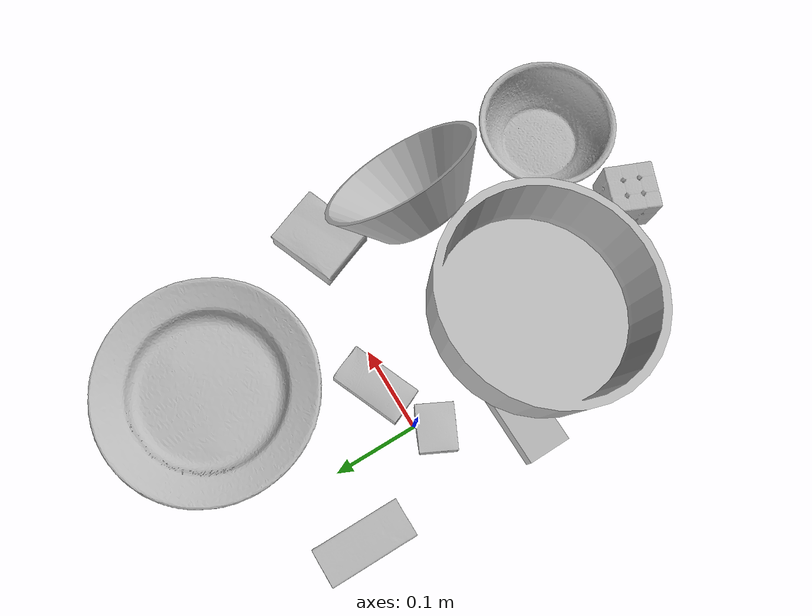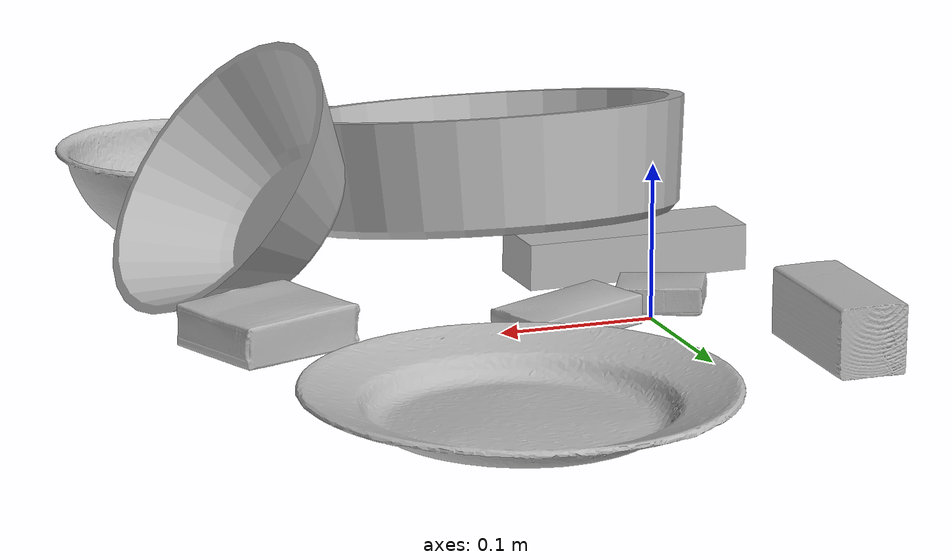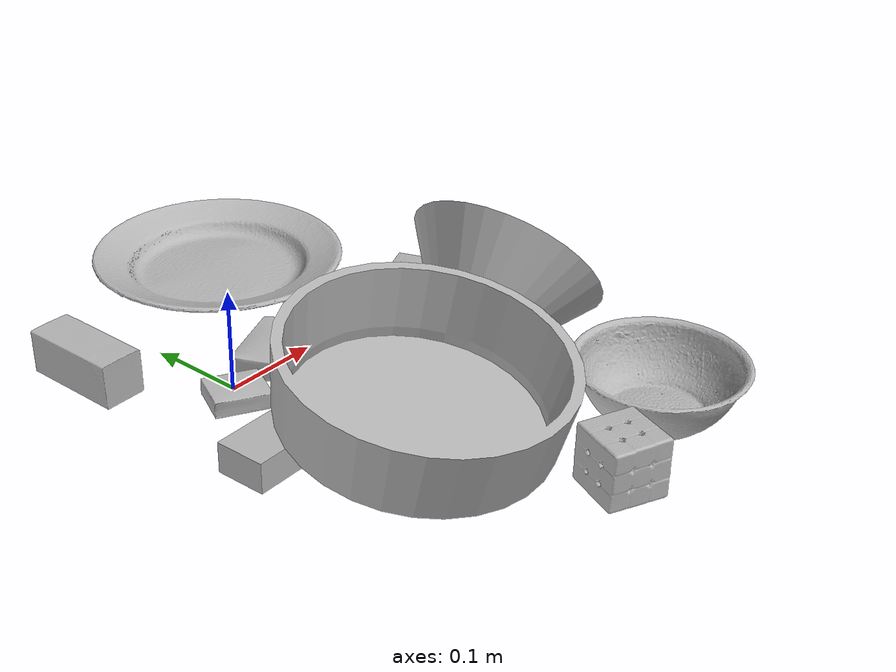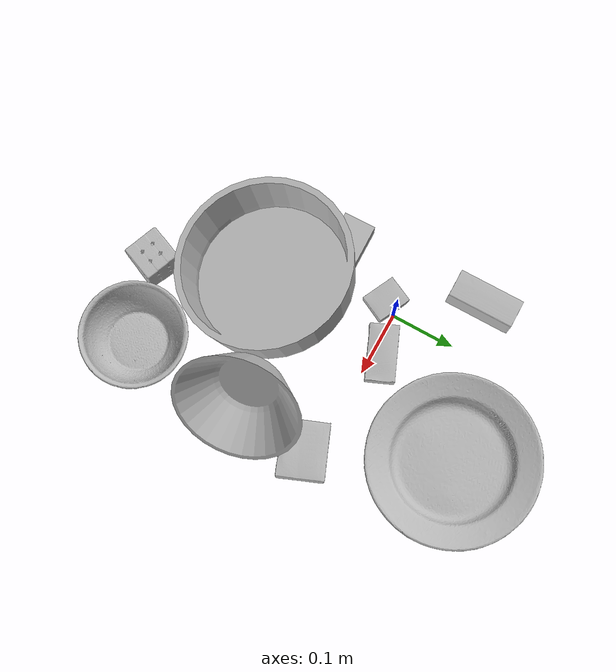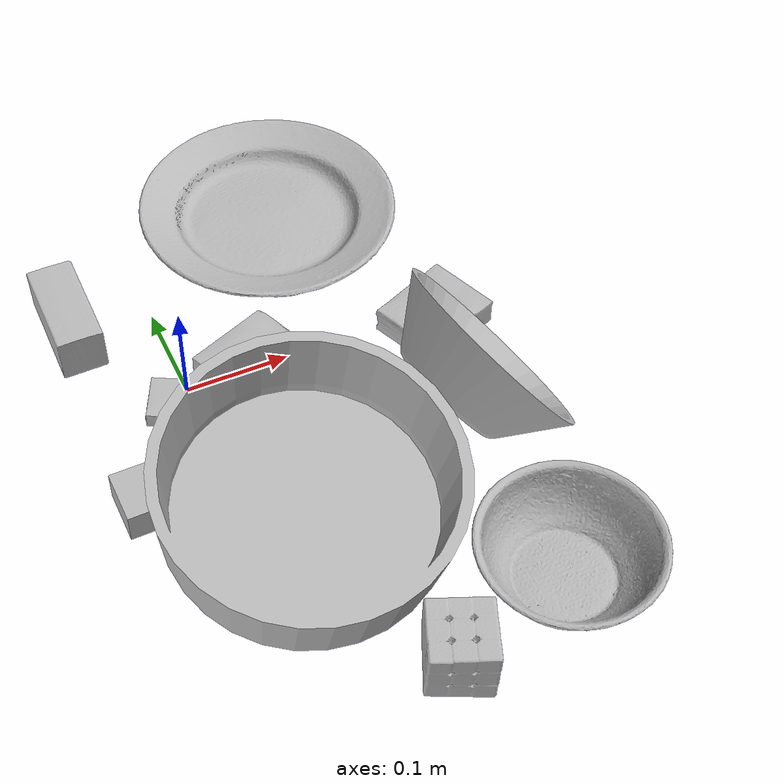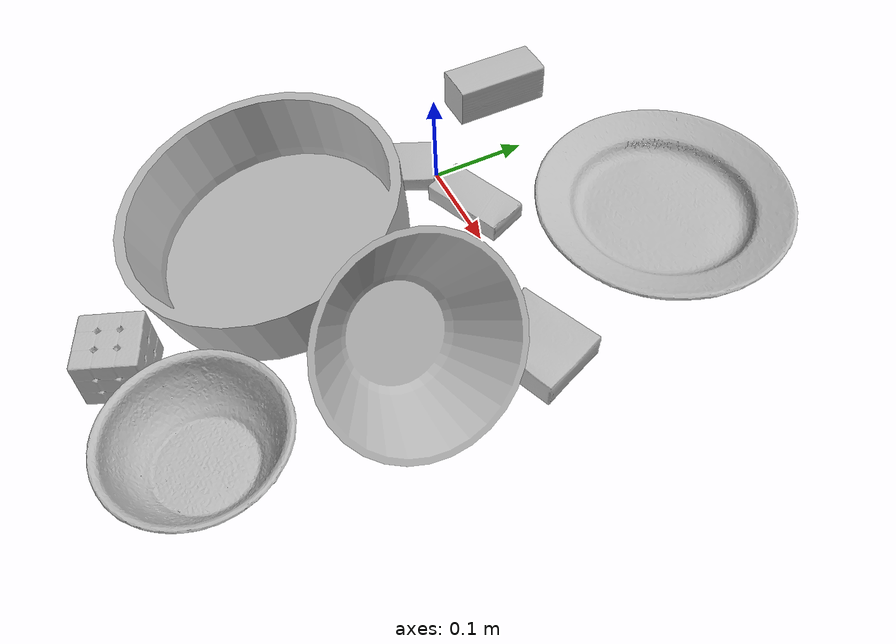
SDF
<sdf version="1.4">
  <world name="default">
    <light name="light1" type="point">
      <pose>0 0 1 0 0 0</pose>
      <diffuse>3 3 3 1</diffuse>
      <specular>3 3 3 1</specular>
    </light>
    <light name="light2" type="point">
      <pose>0 0.5 2 0 0 0</pose>
      <diffuse>1 1 1 1</diffuse>
      <specular>1 1 1 1</specular>
    </light>
    <light name="light3" type="point">
      <pose>0 0.5 2 0 0 0</pose>
      <diffuse>3 3 3 1</diffuse>
      <specular>3 3 3 1</specular>
    </light>
    <scene>
      <ambient>0.7 0.7 0.7</ambient>
    </scene>
    <model name="box1">
      <link name="link_box1">
        <collision name="default">
          <geometry>
            <mesh>
              <uri>model://gelatin_box/collision_meshes/collision.obj</uri>
              <scale>1.0 1.0 1.0</scale>
            </mesh>
          </geometry>
          <surface>
            <friction>
              <ode>
                <mu>0.5</mu>
                <mu2>0.5</mu2>
              </ode>
            </friction>
          <contact>
        <ode>
            <max_vel>0</max_vel>
            <min_depth>0.0001</min_depth>
            <kp>1e8</kp>
        </ode>
    </contact></surface>
        </collision>
        <visual name="default">
          <geometry>
            <mesh>
              <uri>model://gelatin_box/visual_meshes/visual.dae</uri>
              <scale>1.0 1.0 1.0</scale>
            </mesh>
          </geometry>
        </visual>
        <inertial>
          <mass>0.1979130208492279</mass>
          <pose>0.0004319618456065655 0.00011156871914863586 -0.0003640321083366871 -0.0010503722055948273 -0.004755818222760974 0.016440559471883928</pose>
          <inertia>
            <ixx>0.00013971045</ixx>
            <iyy>9.9794444e-05</iyy>
            <izz>0.00021267045</izz>
            <ixy>0</ixy>
            <ixz>0</ixz>
            <iyz>0</iyz>
          </inertia>
        </inertial>
      </link>
      <pose>0.24434328079223633 -0.019896434620022774 0.01516831386834383 0.005597470840348233 -0.007304587341933472 -1.202582659075021</pose>
    </model>
    <model name="box11">
      <link name="link_box11">
        <collision name="default">
          <geometry>
            <mesh>
              <uri>model://sugar_box/collision_meshes/collision.obj</uri>
              <scale>0.5 0.5 0.5</scale>
            </mesh>
          </geometry>
          <surface>
            <friction>
              <ode>
                <mu>0.5</mu>
                <mu2>0.5</mu2>
              </ode>
            </friction>
          <contact>
        <ode>
            <max_vel>0</max_vel>
            <min_depth>0.0001</min_depth>
            <kp>1e8</kp>
        </ode>
    </contact></surface>
        </collision>
        <visual name="default">
          <geometry>
            <mesh>
              <uri>model://sugar_box/visual_meshes/visual.dae</uri>
              <scale>0.5 0.5 0.5</scale>
            </mesh>
          </geometry>
        </visual>
        <inertial>
          <mass>0.10992158949375153</mass>
          <pose>0.0005171863595023751 1.924554817378521e-05 -0.00018182402709499002 -0.00040462650409139634 0.0010506636387973133 0.002615378555960767</pose>
          <inertia>
            <ixx>2.2896586e-05</ixx>
            <iyy>7.400649e-05</iyy>
            <izz>8.8594585e-05</izz>
            <ixy>0</ixy>
            <ixz>0</ixz>
            <iyz>0</iyz>
          </inertia>
        </inertial>
      </link>
      <pose>0.06162531301379204 0.013211723417043686 0.01139930821955204 0.0007752346665224097 -0.02343266226057204 -2.746745781255349</pose>
    </model>
    <model name="box2">
      <link name="link_box2">
        <collision name="default">
          <geometry>
            <mesh>
              <uri>model://jenga/collision_meshes/collision.obj</uri>
              <scale>1.0 1.0 1.0</scale>
            </mesh>
          </geometry>
          <surface>
            <friction>
              <ode>
                <mu>0.5</mu>
                <mu2>0.5</mu2>
              </ode>
            </friction>
          <contact>
        <ode>
            <max_vel>0</max_vel>
            <min_depth>0.0001</min_depth>
            <kp>1e8</kp>
        </ode>
    </contact></surface>
        </collision>
        <visual name="default">
          <geometry>
            <mesh>
              <uri>model://jenga/visual_meshes/visual.dae</uri>
              <scale>1.0 1.0 1.0</scale>
            </mesh>
          </geometry>
        </visual>
        <inertial>
          <mass>0.12651896476745605</mass>
          <pose>-2.502855807051674e-07 -0.00010250010382151231 -4.0923401684267446e-05 0.0 -7.34215461761844e-07 0.0</pose>
          <inertia>
            <ixx>3.5010868e-05</ixx>
            <iyy>0.00023723267</iyy>
            <izz>0.00025326604</izz>
            <ixy>0</ixy>
            <ixz>0</ixz>
            <iyz>0</iyz>
          </inertia>
        </inertial>
      </link>
      <pose>-0.025131233036518097 -0.10981053858995438 0.01500045694410801 2.2318008661861957e-05 1.3659701095304542e-05 0.01605996804622664</pose>
    </model>
    <model name="box21">
      <link name="link_box21">
        <collision name="default">
          <geometry>
            <mesh>
              <uri>model://wood_block/collision_meshes/collision.obj</uri>
              <scale>0.5 0.5 0.5</scale>
            </mesh>
          </geometry>
          <surface>
            <friction>
              <ode>
                <mu>0.5</mu>
                <mu2>0.5</mu2>
              </ode>
            </friction>
          <contact>
        <ode>
            <max_vel>0</max_vel>
            <min_depth>0.0001</min_depth>
            <kp>1e8</kp>
        </ode>
    </contact></surface>
        </collision>
        <visual name="default">
          <geometry>
            <mesh>
              <uri>model://wood_block/visual_meshes/visual.dae</uri>
              <scale>0.5 0.5 0.5</scale>
            </mesh>
          </geometry>
        </visual>
        <inertial>
          <mass>0.17952100932598114</mass>
          <pose>-2.906657982748584e-06 -0.00028540476341731846 0.00013204291462898254 -0.052208472466385096 -0.005192695659959234 -0.0068613786899108485</pose>
          <inertia>
            <ixx>6.0056565e-05</ixx>
            <iyy>0.0001897187</iyy>
            <izz>0.00018900905</izz>
            <ixy>0</ixy>
            <ixz>0</ixz>
            <iyz>0</iyz>
          </inertia>
        </inertial>
      </link>
      <pose>-0.07841718941926956 0.11052088439464569 0.022629262879490852 -0.005208615433684585 0.005718777212560978 1.5743388032146248</pose>
    </model>
    <model name="box3">
      <link name="link_box3">
        <collision name="default">
          <geometry>
            <mesh>
              <uri>model://rubiks_cube/collision_meshes/collision.obj</uri>
              <scale>1.0 1.0 1.0</scale>
            </mesh>
          </geometry>
          <surface>
            <friction>
              <ode>
                <mu>0.5</mu>
                <mu2>0.5</mu2>
              </ode>
            </friction>
          <contact>
        <ode>
            <max_vel>0</max_vel>
            <min_depth>0.0001</min_depth>
            <kp>1e8</kp>
        </ode>
    </contact></surface>
        </collision>
        <visual name="default">
          <geometry>
            <mesh>
              <uri>model://rubiks_cube/visual_meshes/visual.dae</uri>
              <scale>1.0 1.0 1.0</scale>
            </mesh>
          </geometry>
        </visual>
        <inertial>
          <mass>0.2539031207561493</mass>
          <pose>2.6721041649580002e-05 5.2569666877388954e-05 -7.264316082000732e-06 -0.05467208428881645 -0.09814040742269707 -0.034455380154792534</pose>
          <inertia>
            <ixx>0.00014029852</ixx>
            <iyy>0.00013964424</iyy>
            <izz>0.00014146113</izz>
            <ixy>0</ixy>
            <ixz>0</ixz>
            <iyz>0</iyz>
          </inertia>
        </inertial>
      </link>
      <pose>0.09958235174417496 -0.35399284958839417 0.028678975999355316 -3.467254578892829e-06 -9.83100164162887e-07 -0.3970431203383032</pose>
    </model>
    <model name="box31">
      <link name="link_box31">
        <collision name="default">
          <geometry>
            <mesh>
              <uri>model://pudding_box/collision_meshes/collision.obj</uri>
              <scale>0.5 0.5 0.5</scale>
            </mesh>
          </geometry>
          <surface>
            <friction>
              <ode>
                <mu>0.5</mu>
                <mu2>0.5</mu2>
              </ode>
            </friction>
          <contact>
        <ode>
            <max_vel>0</max_vel>
            <min_depth>0.0001</min_depth>
            <kp>1e8</kp>
        </ode>
    </contact></surface>
        </collision>
        <visual name="default">
          <geometry>
            <mesh>
              <uri>model://pudding_box/visual_meshes/visual.dae</uri>
              <scale>0.5 0.5 0.5</scale>
            </mesh>
          </geometry>
        </visual>
        <inertial>
          <mass>0.030597222968935966</mass>
          <pose>0.00024474109522998333 0.00040339428232982755 -0.00025944135268218815 0.005213101792545572 -0.006603798718575614 0.020079825159656634</pose>
          <inertia>
            <ixx>8.6471455e-06</ixx>
            <iyy>5.8178607e-06</iyy>
            <izz>1.2769769e-05</izz>
            <ixy>0</ixy>
            <ixz>0</ixz>
            <iyz>0</iyz>
          </inertia>
        </inertial>
      </link>
      <pose>-0.014117414131760597 -0.0200398750603199 0.009862907230854034 0.022348465612644735 -0.011391481049389713 1.1105860082150218</pose>
    </model>
    <model name="plate1">
      <link name="link_plate1">
        <collision name="default">
          <geometry>
            <mesh>
              <uri>model://pan_tefal/collision_meshes/collision.obj</uri>
              <scale>1.0 1.0 1.0</scale>
            </mesh>
          </geometry>
          <surface>
            <friction>
              <ode>
                <mu>0.5</mu>
                <mu2>0.5</mu2>
              </ode>
            </friction>
          <contact>
        <ode>
            <max_vel>0</max_vel>
            <min_depth>0.0001</min_depth>
            <kp>1e8</kp>
        </ode>
    </contact></surface>
        </collision>
        <visual name="default">
          <geometry>
            <mesh>
              <uri>model://pan_tefal/visual_meshes/visual.dae</uri>
              <scale>1.0 1.0 1.0</scale>
            </mesh>
          </geometry>
        </visual>
        <inertial>
          <mass>1.6321053504943848</mass>
          <pose>-0.00018001697026193142 3.279276279499754e-05 -0.00851493887603283 0.0008190355512640809 -0.00033013448733331557 -0.33186498661790637</pose>
          <inertia>
            <ixx>0.011266344</ixx>
            <iyy>0.011338978</iyy>
            <izz>0.02073917</izz>
            <ixy>0</ixy>
            <ixz>0</ixz>
            <iyz>0</iyz>
          </inertia>
        </inertial>
      </link>
      <pose>0.041349560022354126 -0.18930146098136902 0.05875692889094353 -0.08587744668131507 0.16186093878254848 -2.048009305543858</pose>
    </model>
    <model name="bowl1">
      <link name="link_bowl1">
        <collision name="default">
          <geometry>
            <mesh>
              <uri>model://bowl/collision_meshes/collision.obj</uri>
              <scale>1.0 1.0 1.0</scale>
            </mesh>
          </geometry>
          <surface>
            <friction>
              <ode>
                <mu>0.5</mu>
                <mu2>0.5</mu2>
              </ode>
            </friction>
          <contact>
        <ode>
            <max_vel>0</max_vel>
            <min_depth>0.0001</min_depth>
            <kp>1e8</kp>
        </ode>
    </contact></surface>
        </collision>
        <visual name="default">
          <geometry>
            <mesh>
              <uri>model://bowl/visual_meshes/visual.dae</uri>
              <scale>1.0 1.0 1.0</scale>
            </mesh>
          </geometry>
        </visual>
        <inertial>
          <mass>0.08853479474782944</mass>
          <pose>0.0002044534485321492 -0.0010302085429430008 -0.0008042657864280045 -0.015764086220495594 0.014546762208611713 0.7140398935341641</pose>
          <inertia>
            <ixx>0.00020337135</ixx>
            <iyy>0.00019882726</iyy>
            <izz>0.00034214073</izz>
            <ixy>0</ixy>
            <ixz>0</ixz>
            <iyz>0</iyz>
          </inertia>
        </inertial>
      </link>
      <pose>0.217742457985878 -0.31649157404899597 0.02778000757098198 2.2157135284074873e-09 -4.9450856373750546e-08 2.9013820076740333</pose>
    </model>
    <model name="plate2">
      <link name="link_plate2">
        <collision name="default">
          <geometry>
            <mesh>
              <uri>model://plate/collision_meshes/collision.obj</uri>
              <scale>1.0 1.0 1.0</scale>
            </mesh>
          </geometry>
          <surface>
            <friction>
              <ode>
                <mu>0.5</mu>
                <mu2>0.5</mu2>
              </ode>
            </friction>
          <contact>
        <ode>
            <max_vel>0</max_vel>
            <min_depth>0.0001</min_depth>
            <kp>1e8</kp>
        </ode>
    </contact></surface>
        </collision>
        <visual name="default">
          <geometry>
            <mesh>
              <uri>model://plate/visual_meshes/visual.dae</uri>
              <scale>1.0 1.0 1.0</scale>
            </mesh>
          </geometry>
        </visual>
        <inertial>
          <mass>0.10531359910964966</mass>
          <pose>-0.0006044624024070799 0.00027825951110571623 -0.001056199660524726 0.0022187923451504944 -0.0032254757952566134 0.45260828030698763</pose>
          <inertia>
            <ixx>0.00049265905</ixx>
            <iyy>0.00048794702</iyy>
            <izz>0.0009635677</izz>
            <ixy>0</ixy>
            <ixz>0</ixz>
            <iyz>0</iyz>
          </inertia>
        </inertial>
      </link>
      <pose>0.15337054431438446 0.17933031916618347 0.013732997700572014 -2.9644105345133818e-09 -7.881045329154476e-10 0.6457893315149892</pose>
    </model>
    <model name="bowl2">
      <link name="link_bowl2">
        <collision name="default">
          <geometry>
            <mesh>
              <uri>model://bowl_a/collision_meshes/collision.obj</uri>
              <scale>1.0 1.0 1.0</scale>
            </mesh>
          </geometry>
          <surface>
            <friction>
              <ode>
                <mu>0.5</mu>
                <mu2>0.5</mu2>
              </ode>
            </friction>
          <contact>
        <ode>
            <max_vel>0</max_vel>
            <min_depth>0.0001</min_depth>
            <kp>1e8</kp>
        </ode>
    </contact></surface>
        </collision>
        <visual name="default">
          <geometry>
            <mesh>
              <uri>model://bowl_a/visual_meshes/visual.dae</uri>
              <scale>1.0 1.0 1.0</scale>
            </mesh>
          </geometry>
        </visual>
        <inertial>
          <mass>0.4180941581726074</mass>
          <pose>0.000278673687716946 4.731199442176148e-05 -0.0013765294570475817 -0.0009805326545729344 -0.001093820496942545 -0.19124076645491772</pose>
          <inertia>
            <ixx>0.0011903334</ixx>
            <iyy>0.0011976411</iyy>
            <izz>0.0021170534</izz>
            <ixy>0</ixy>
            <ixz>0</ixz>
            <iyz>0</iyz>
          </inertia>
        </inertial>
      </link>
      <pose>0.2211354821920395 -0.13066451251506805 0.06373495608568192 -0.450170792837882 0.8491281122416237 -0.42510478743303254</pose>
    </model>
  <physics type="ode">
      <max_contacts>50</max_contacts>
      <ode>
        <solver>
          <type>quick</type>
          <iters>75</iters>
        </solver>
        <constraints>
          <contact_max_correcting_vel>0</contact_max_correcting_vel>
          <contact_surface_layer>0</contact_surface_layer>
        </constraints>
      </ode>
    </physics></world>
</sdf>
